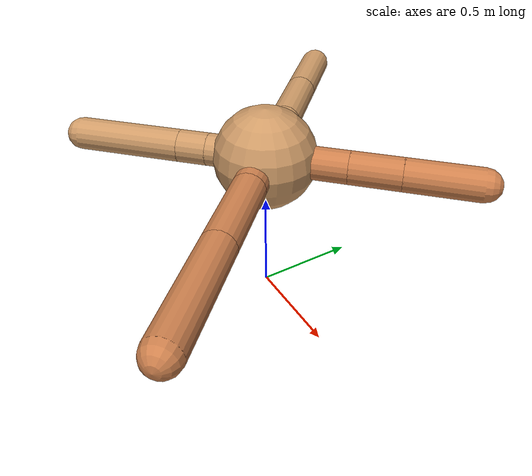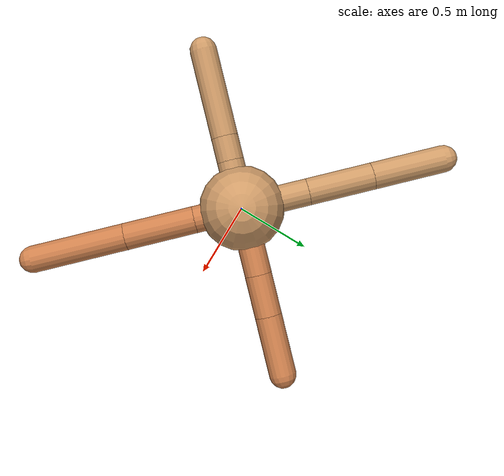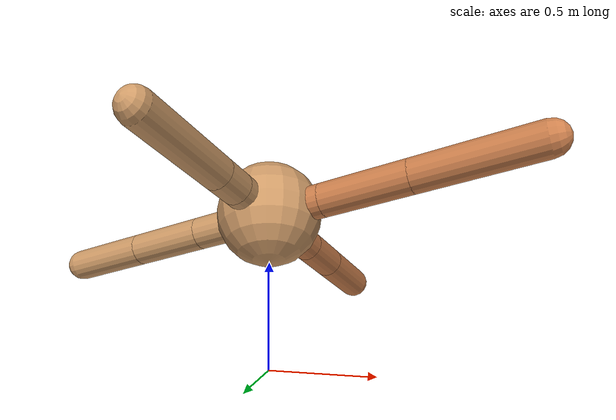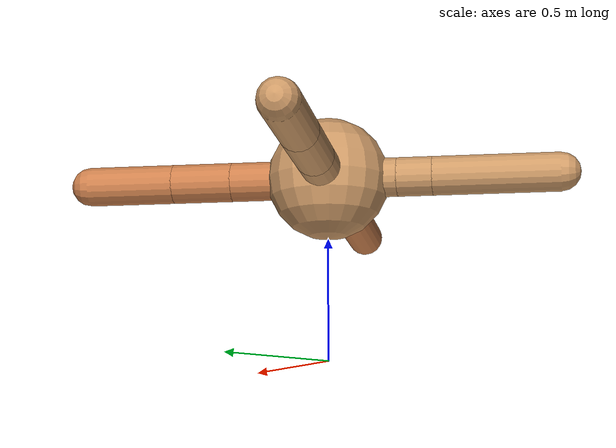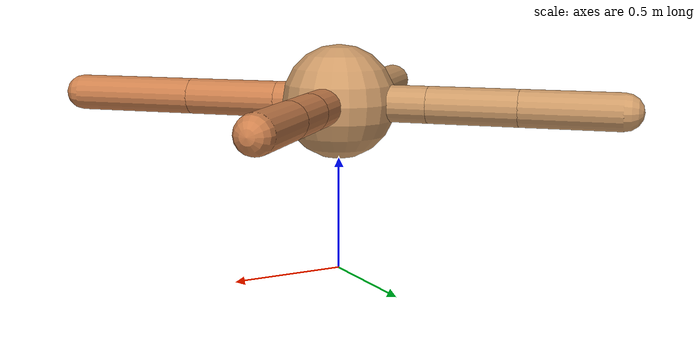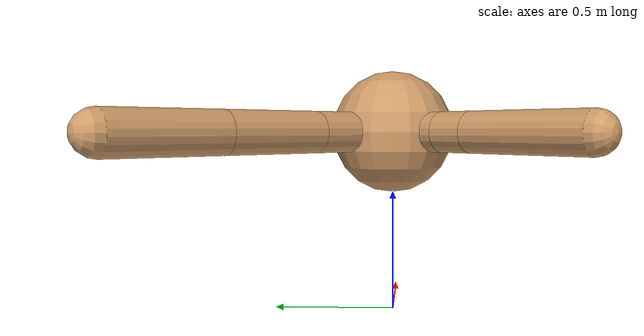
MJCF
<mujoco model="ant">
  <compiler angle="degree" coordinate="local" inertiafromgeom="true" />
  <option integrator="RK4" timestep="0.01" />
  <custom>
    <numeric data="0.0 0.0 0.55 1.0 0.0 0.0 0.0 0.0 1.0 0.0 -1.0 0.0 -1.0 0.0 1.0" name="init_qpos" />
  </custom>
  <default>
    <joint armature="1" damping="1" limited="true" />
    <geom conaffinity="0" condim="3" density="5.0" friction="1.5 0.1 0.1" margin="0.01" rgba="0.8 0.6 0.4 1" />
  </default>
  <worldbody>
    <body name="torso" pos="0 0 0.75">
      <geom name="torso_geom" pos="0 0 0" size="0.25" type="sphere" />

      <body name="front_left_leg" pos="0 0 0">
        <geom fromto="0.0 0.0 0.0 0.28191981039940256 0.28191981039940256 0.0" name="aux_1_geom" size="0.08" type="capsule" rgba=".8 .5 .3 1" />
        <body name="aux_1" pos="0.28191981039940256 0.28191981039940256 0.0">
          <joint axis="0 0 1" name="hip_1" pos="0.0 0.0 0.0" range="-40 40" type="hinge" />
          <geom fromto="0.0 0.0 0.0 0.17414824855019823 0.17414824855019823 0.0" name="left_leg_geom" size="0.08" type="capsule" rgba=".8 .5 .3 1" />
          <body pos="0.17414824855019823 0.17414824855019823 0.0" name="front_left_foot">
            <joint axis="-1 1 0" name="ankle_1" pos="0.0 0.0 0.0" range="30 100" type="hinge" />
            <geom fromto="0.0 0.0 0.0 0.2505104515215615 0.2505104515215615 0.0" name="left_ankle_geom" size="0.08" type="capsule" rgba=".8 .5 .3 1" />
          </body>
        </body>
      </body>
      <body name="front_right_leg" pos="0 0 0">
        <geom fromto="0.0 0.0 0.0 -0.280355688571219 0.280355688571219 0.0" name="aux_2_geom" size="0.08" type="capsule" />
        <body name="aux_2" pos="-0.280355688571219 0.280355688571219 0.0">
          <joint axis="0 0 1" name="hip_2" pos="0.0 0.0 0.0" range="-40 40" type="hinge" />
          <geom fromto="0.0 0.0 0.0 -0.27312741550611674 0.27312741550611674 0.0" name="right_leg_geom" size="0.08" type="capsule" />
          <body pos="-0.27312741550611674 0.27312741550611674 0.0" name="front_right_foot">
            <joint axis="1 1 0" name="ankle_2" pos="0.0 0.0 0.0" range="-100 -30" type="hinge" />
            <geom fromto="0.0 0.0 0.0 -0.2996699392074894 0.2996699392074894 0.0" name="right_ankle_geom" size="0.08" type="capsule" />
          </body>
        </body>
      </body>
      <body name="left_back_leg" pos="0 0 0">
        <geom fromto="0.0 0.0 0.0 -0.2 -0.2 0.0" name="aux_3_geom" size="0.08" type="capsule" />
        <body name="aux_3" pos="-0.2 -0.2 0.0">
          <joint axis="0 0 1" name="hip_3" pos="0.0 0.0 0.0" range="-40 40" type="hinge" />
          <geom fromto="0.0 0.0 0.0 -0.10223453760910764 -0.10223453760910764 0.0" name="back_leg_geom" size="0.08" type="capsule" />
          <body pos="-0.10223453760910764 -0.10223453760910764 0.0" name="left_back_foot">
            <joint axis="-1 1 0" name="ankle_3" pos="0.0 0.0 0.0" range="-100 -30" type="hinge" />
            <geom fromto="0.0 0.0 0.0 -0.36667497715044406 -0.36667497715044406 0.0" name="third_ankle_geom" size="0.08" type="capsule" />
          </body>
        </body>
      </body>
      <body name="right_back_leg" pos="0 0 0">
        <geom fromto="0.0 0.0 0.0 0.2 -0.2 0.0" name="aux_4_geom" size="0.08" type="capsule" rgba=".8 .5 .3 1" />
        <body name="aux_4" pos="0.2 -0.2 0.0">
          <joint axis="0 0 1" name="hip_4" pos="0.0 0.0 0.0" range="-40 40" type="hinge" />
          <geom fromto="0.0 0.0 0.0 0.2940560603658211 -0.2940560603658211 0.0" name="rightback_leg_geom" size="0.08" type="capsule" rgba=".8 .5 .3 1" />
          <body pos="0.2940560603658211 -0.2940560603658211 0.0" name="right_back_foot">
            <joint axis="1 1 0" name="ankle_4" pos="0.0 0.0 0.0" range="30 100" type="hinge" />
            <geom fromto="0.0 0.0 0.0 0.3917319373916982 -0.3917319373916982 0.0" name="fourth_ankle_geom" size="0.08" type="capsule" rgba=".8 .5 .3 1" />
          </body>
        </body>
      </body>
    </body>
  </worldbody>
  <actuator>
    <motor ctrllimited="true" ctrlrange="-1.0 1.0" joint="hip_4" gear="150" />
    <motor ctrllimited="true" ctrlrange="-1.0 1.0" joint="ankle_4" gear="150" />
    <motor ctrllimited="true" ctrlrange="-1.0 1.0" joint="hip_1" gear="150" />
    <motor ctrllimited="true" ctrlrange="-1.0 1.0" joint="ankle_1" gear="150" />
    <motor ctrllimited="true" ctrlrange="-1.0 1.0" joint="hip_2" gear="150" />
    <motor ctrllimited="true" ctrlrange="-1.0 1.0" joint="ankle_2" gear="150" />
    <motor ctrllimited="true" ctrlrange="-1.0 1.0" joint="hip_3" gear="150" />
    <motor ctrllimited="true" ctrlrange="-1.0 1.0" joint="ankle_3" gear="150" />
  </actuator>
</mujoco>
